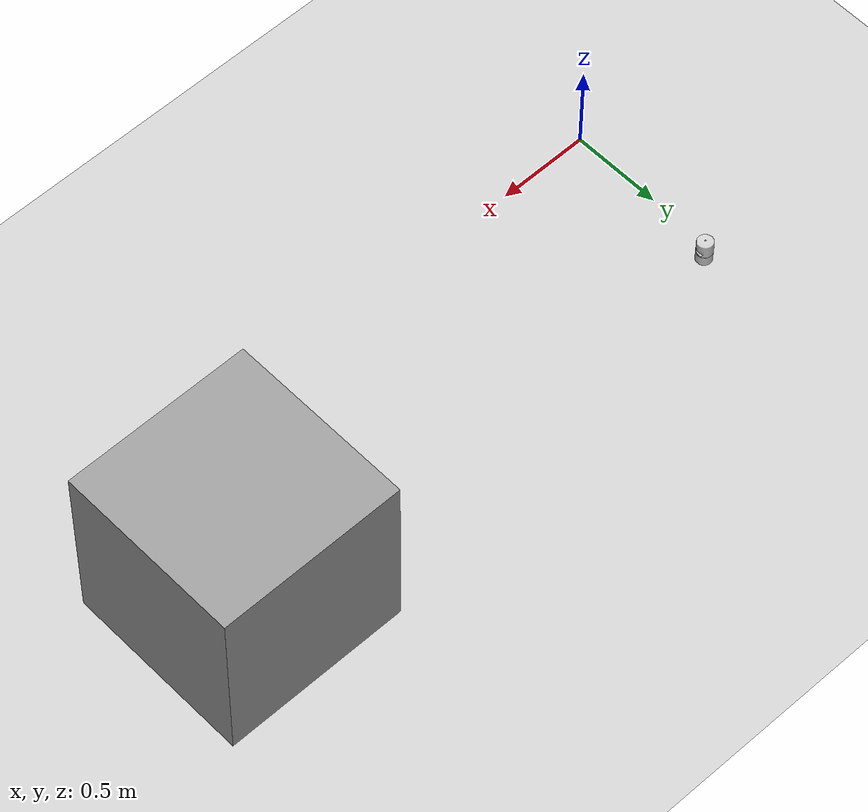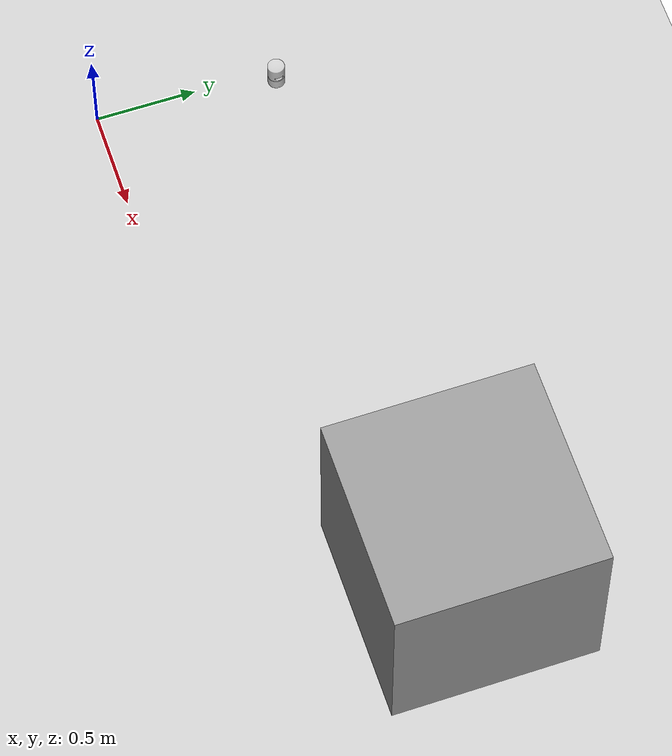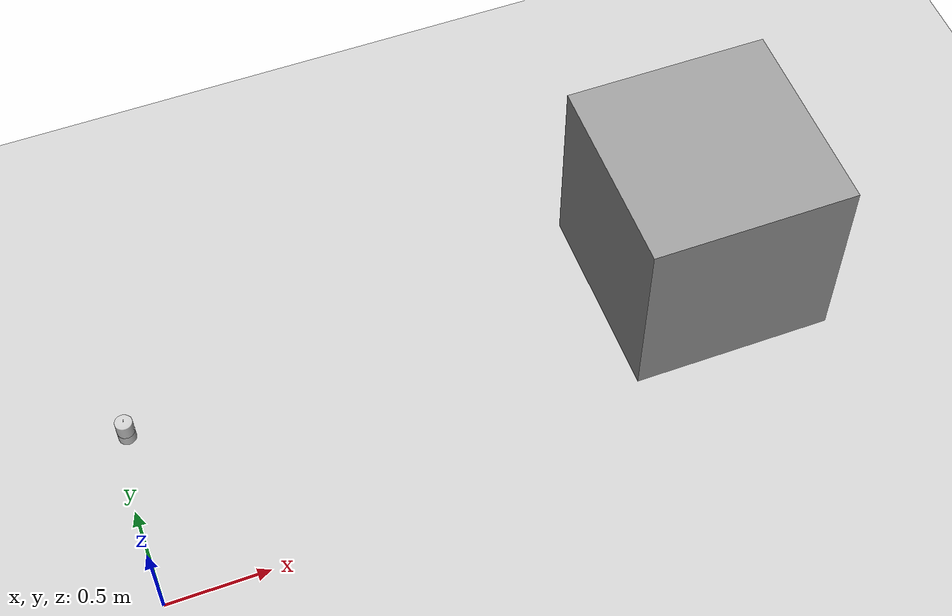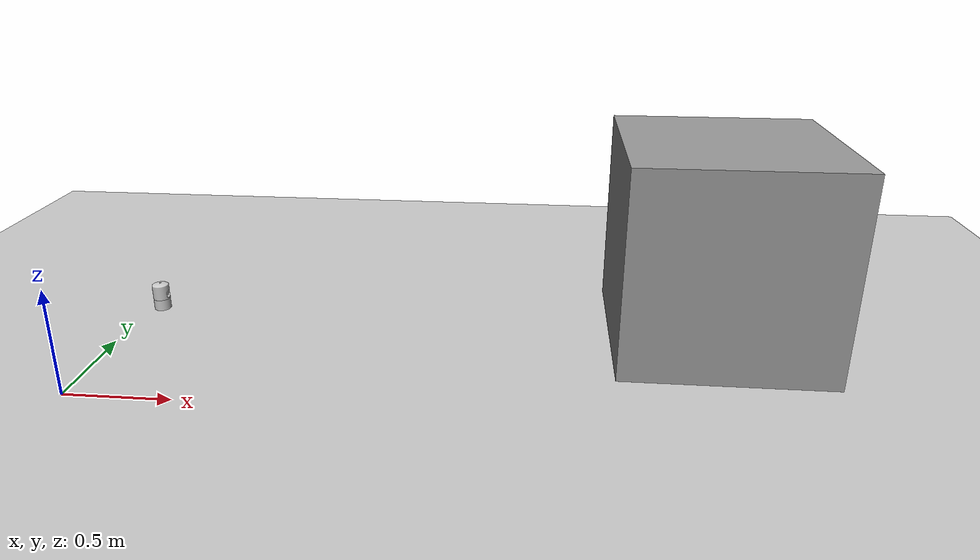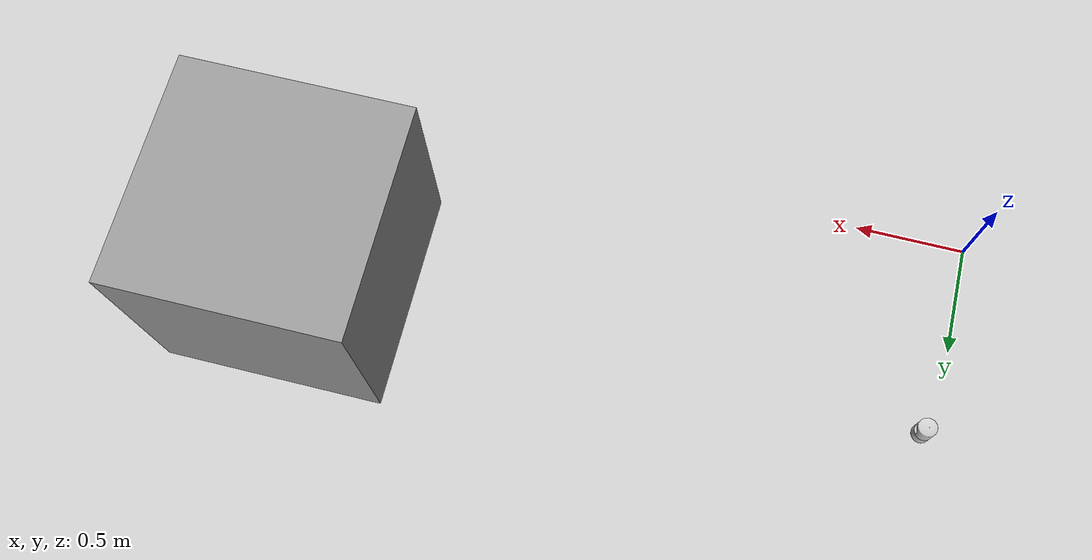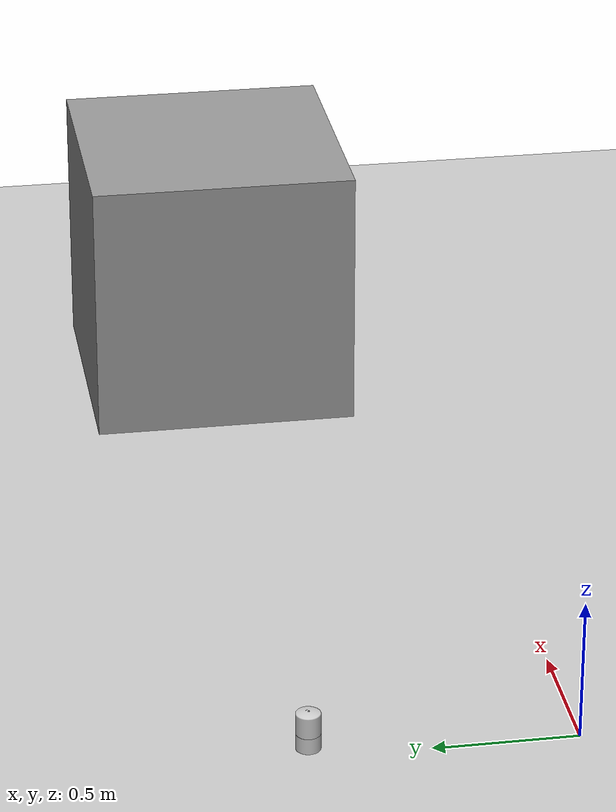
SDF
<sdf version="1.7">
 <world name="default">
  <light name="sun" type="directional">
   <pose>0 0 10 0 -0 0</pose>
   <diffuse>0.8 0.8 0.8 1</diffuse>
   <specular>0.2 0.2 0.2 1</specular>
   <attenuation>
    <range>1000</range>
    <constant>0.9</constant>
    <linear>0.01</linear>
    <quadratic>0.001</quadratic>
   </attenuation>
   <direction>-0.5 0.1 -0.9</direction>
   <spot><inner_angle>0</inner_angle><outer_angle>0</outer_angle><falloff>0</falloff></spot>
  </light>
  <model name="ground_plane">
   <static>1</static>
   <link name="link">
    <collision name="collision">
     <geometry><plane><normal>0 0 1</normal><size>100 100</size></plane></geometry>
     <surface><friction><ode><mu>100</mu><mu2>50</mu2></ode></friction></surface>
    </collision>
    <visual name="visual">
     <cast_shadows>0</cast_shadows>
     <geometry><plane><normal>0 0 1</normal><size>100 100</size></plane></geometry>
     <material>
      <script><uri>file://media/materials/scripts/gazebo.material</uri><name>Gazebo/Grey</name></script>
     </material>
    </visual>
   </link>
  </model>
  <gravity>0 0 -9.8</gravity>
  <magnetic_field>6e-06 2.3e-05 -4.2e-05</magnetic_field>
  <atmosphere type="adiabatic"/>
  <physics type="ode">
   <max_step_size>0.001</max_step_size>
   <real_time_factor>1</real_time_factor>
   <real_time_update_rate>1000</real_time_update_rate>
  </physics>
  <scene><ambient>0.4 0.4 0.4 1</ambient><background>0.7 0.7 0.7 1</background><shadows>1</shadows></scene>
  <spherical_coordinates>
   <surface_model>EARTH_WGS84</surface_model>
   <latitude_deg>0</latitude_deg>
   <longitude_deg>0</longitude_deg>
   <elevation>0</elevation>
   <heading_deg>0</heading_deg>
  </spherical_coordinates>
  <audio><device>default</device></audio>
  <model name="velodyne_hdl-32">
   <link name="base">
    <pose>0 0 0.029335 0 -0 0</pose>
    <inertial>
     <mass>1.2</mass>
     <inertia>
      <ixx>0.00108747</ixx>
      <iyy>0.00108747</iyy>
      <izz>0.00109244</izz>
      <ixy>0</ixy>
      <ixz>0</ixz>
      <iyz>0</iyz>
     </inertia>
    </inertial>
    <visual name="base_visual">
     <pose>0 0 -0.029335 0 -0 0</pose>
     <geometry><mesh><uri>model://velodyne_hdl32/meshes/velodyne_base.dae</uri></mesh></geometry>
     <material><shader type="pixel"/></material>
    </visual>
    <collision name="base_collision">
     <geometry><cylinder><radius>0.04267</radius><length>0.05867</length></cylinder></geometry>
     <surface>
      <friction>
       <ode><mu>1</mu><mu2>1</mu2><fdir1>0 0 0</fdir1><slip1>0</slip1><slip2>0</slip2></ode>
       <torsional>
        <coefficient>1</coefficient>
        <patch_radius>0</patch_radius>
        <surface_radius>0</surface_radius>
        <use_patch_radius>1</use_patch_radius>
        <ode><slip>0</slip></ode>
       </torsional>
      </friction>
      <bounce><restitution_coefficient>0</restitution_coefficient><threshold>1e+06</threshold></bounce>
      <contact>
       <collide_without_contact>0</collide_without_contact>
       <collide_without_contact_bitmask>1</collide_without_contact_bitmask>
       <collide_bitmask>1</collide_bitmask>
       <ode>
        <soft_cfm>0</soft_cfm>
        <soft_erp>0.2</soft_erp>
        <kp>1e+13</kp>
        <kd>1</kd>
        <max_vel>0.01</max_vel>
        <min_depth>0</min_depth>
       </ode>
       <bullet>
        <split_impulse>1</split_impulse>
        <split_impulse_penetration_threshold>-0.01</split_impulse_penetration_threshold>
        <soft_cfm>0</soft_cfm>
        <soft_erp>0.2</soft_erp>
        <kp>1e+13</kp>
        <kd>1</kd>
       </bullet>
      </contact>
     </surface>
    </collision>
   </link>
   <link name="top">
    <pose>0 0 0.095455 0 -0 0</pose>
    <inertial>
     <mass>0.1</mass>
     <inertia>
      <ixx>9.062e-05</ixx>
      <iyy>9.062e-05</iyy>
      <izz>9.104e-05</izz>
      <ixy>0</ixy>
      <ixz>0</ixz>
      <iyz>0</iyz>
     </inertia>
    </inertial>
    <sensor name="sensor" type="ray">
     <pose>0 0 -0.004645 1.5707 -0 0</pose>
     <visualize>1</visualize>
     <update_rate>30</update_rate>
     <ray>
      <scan>
       <horizontal>
        <samples>32</samples>
        <resolution>1</resolution>
        <min_angle>-0.535292</min_angle>
        <max_angle>0.186227</max_angle>
       </horizontal>
       <vertical><samples>1</samples><min_angle>0</min_angle><max_angle>0</max_angle></vertical>
      </scan>
      <range><min>0.05</min><max>70</max><resolution>0.02</resolution></range>
     </ray>
    </sensor>
    <gravity>0</gravity>
    <visual name="top_visual">
     <pose>0 0 -0.037679 0 -0 1.5707</pose>
     <geometry><mesh><uri>model://velodyne_hdl32/meshes/velodyne_top.dae</uri></mesh></geometry>
     <material><shader type="pixel"><normal_map>__default__</normal_map></shader></material>
    </visual>
    <collision name="top_collision">
     <geometry><cylinder><radius>0.04267</radius><length>0.07357</length></cylinder></geometry>
     <surface>
      <friction>
       <ode><mu>1</mu><mu2>1</mu2><fdir1>0 0 0</fdir1><slip1>0</slip1><slip2>0</slip2></ode>
       <torsional>
        <coefficient>1</coefficient>
        <patch_radius>0</patch_radius>
        <surface_radius>0</surface_radius>
        <use_patch_radius>1</use_patch_radius>
        <ode><slip>0</slip></ode>
       </torsional>
      </friction>
      <bounce><restitution_coefficient>0</restitution_coefficient><threshold>1e+06</threshold></bounce>
      <contact>
       <collide_without_contact>0</collide_without_contact>
       <collide_without_contact_bitmask>1</collide_without_contact_bitmask>
       <collide_bitmask>1</collide_bitmask>
       <ode>
        <soft_cfm>0</soft_cfm>
        <soft_erp>0.2</soft_erp>
        <kp>1e+13</kp>
        <kd>1</kd>
        <max_vel>0.01</max_vel>
        <min_depth>0</min_depth>
       </ode>
       <bullet>
        <split_impulse>1</split_impulse>
        <split_impulse_penetration_threshold>-0.01</split_impulse_penetration_threshold>
        <soft_cfm>0</soft_cfm>
        <soft_erp>0.2</soft_erp>
        <kp>1e+13</kp>
        <kd>1</kd>
       </bullet>
      </contact>
     </surface>
    </collision>
   </link>
   <static>0</static>
   <joint name="joint" type="revolute">
    <pose>0 0 -0.036785 0 -0 0</pose>
    <parent>base</parent>
    <child>top</child>
    <axis>
     <xyz>0 0 1</xyz>
     <limit><lower>-1e+16</lower><upper>1e+16</upper></limit>
     <dynamics><spring_reference>0</spring_reference><spring_stiffness>0</spring_stiffness></dynamics>
    </axis>
   </joint>
   <plugin name="velodyne_plugin" filename="/home/miguel/universidade/gazebo_velodyne/plugins/velodyne/build/libvelodyne_plugin.so">
    <velocity>5</velocity>
   </plugin>
   <pose>0.067227 0.900603 -1e-06 3e-06 5e-06 -0</pose>
  </model>
  <model name="unit_box">
   <pose>2.9361 0.839216 0.5 0 -0 0</pose>
   <link name="link">
    <inertial>
     <mass>1</mass>
     <inertia>
      <ixx>0.166667</ixx>
      <ixy>0</ixy>
      <ixz>0</ixz>
      <iyy>0.166667</iyy>
      <iyz>0</iyz>
      <izz>0.166667</izz>
     </inertia>
    </inertial>
    <collision name="collision"><geometry><box><size>1 1 1</size></box></geometry></collision>
    <visual name="visual">
     <geometry><box><size>1 1 1</size></box></geometry>
     <material>
      <script><name>Gazebo/Grey</name><uri>file://media/materials/scripts/gazebo.material</uri></script>
     </material>
    </visual>
   </link>
  </model>
  <joint type="revolute" name="joint">
   <pose>0 0 -0.036785 0 0 0</pose>
   <parent>base</parent>
   <child>top</child>
   <axis><xyz>0 0 1</xyz><limit><lower>-10000000000000000</lower><upper>10000000000000000</upper></limit></axis>
  </joint>
 </world>
</sdf>
